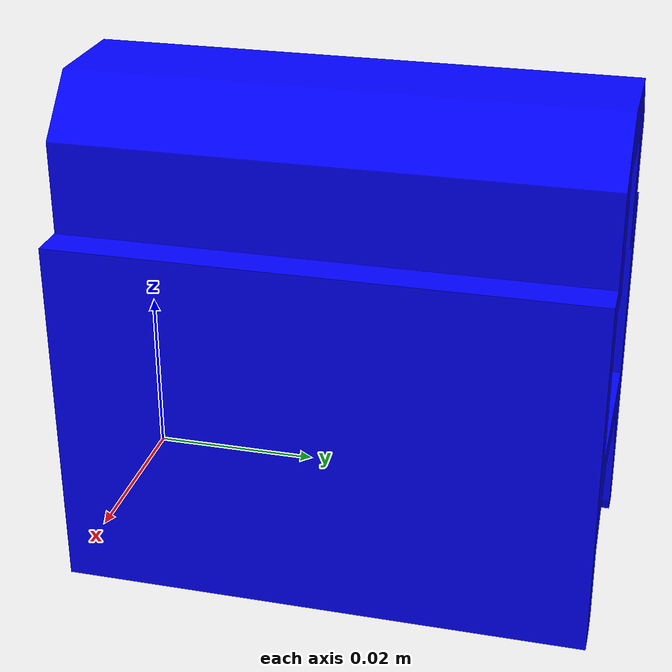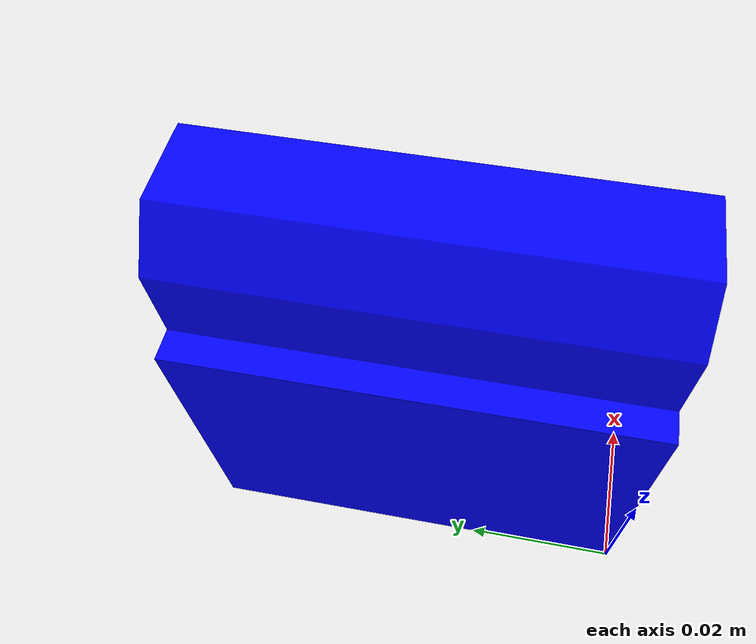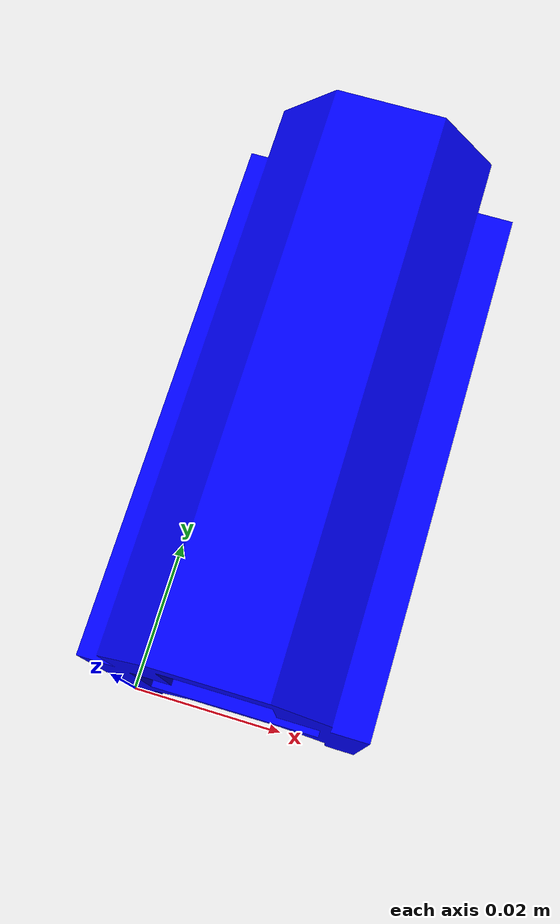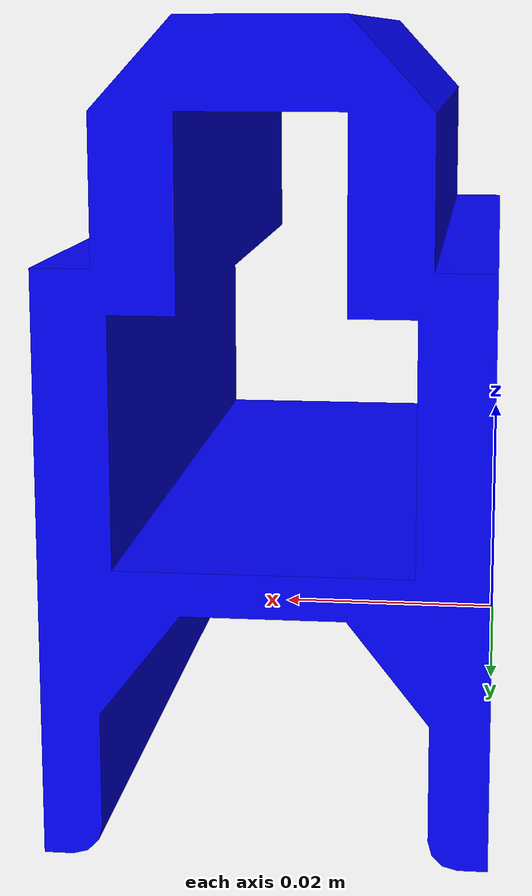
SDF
<?xml version="1.0" ?>
<sdf version="1.5">
  <model name='I_brick'>
    <pose>0 0 0 0 0 0</pose>
    <link name='link'>
      <inertial>
        <mass>0.15</mass>
        <pose>0.015 0.029 0.02 0 0 0</pose>
        <inertia>
          <ixx>2.0e-4</ixx>
          <iyy>6.0e-4</iyy>
          <izz>7.0e-4</izz>
          <ixy>0</ixy>
          <ixz>0</ixz>
          <iyz>0</iyz>
        </inertia>
      </inertial>

      <visual name='I_brick_visual'>
        <pose>0 0 0 0 0 0</pose>
        <geometry>
          <mesh>
            <uri>model://I_brick/I_brick.STL</uri>
            <scale>0.001 0.001 0.001</scale>
          </mesh>
        </geometry>
        <material><ambient>0 0 1 1</ambient><diffuse>0 0 1 1</diffuse></material>
      </visual>

      <collision name='wall_left'>
        <pose>0.002 0.029 0.02 0 0 0</pose>
        <geometry><box><size>0.004 0.058 0.04</size></box></geometry>
      </collision>
      <collision name='wall_right'>
        <pose>0.028 0.029 0.02 0 0 0</pose>
        <geometry><box><size>0.004 0.058 0.04</size></box></geometry>
      </collision>
      <collision name='roof'>
        <pose>0.015 0.029 0.039 0 0 0</pose>
        <geometry><box><size>0.03 0.058 0.002</size></box></geometry>
      </collision>

      <collision name='stud'>
        <pose>0.015 0.029 0.044 0 0 0</pose>
        <geometry><box><size>0.022 0.058 0.012</size></box></geometry>
      </collision>
      <collision name="grasp_proxy">
        <pose>0.015 0.029 0.02 0 0 0</pose>
        <geometry>
          <box>
            <size>0.03 0.058 0.04</size>
          </box>
        </geometry>
        <surface>
          <friction>
            <ode>
              <mu>1.5</mu>
              <mu2>1.5</mu2>
            </ode>
          </friction>
          <contact>
            <ode>
              <kp>1e6</kp>
              <kd>1.0</kd>
            </ode>
          </contact>
        </surface>
      </collision>

    </link>
  </model>
</sdf>
